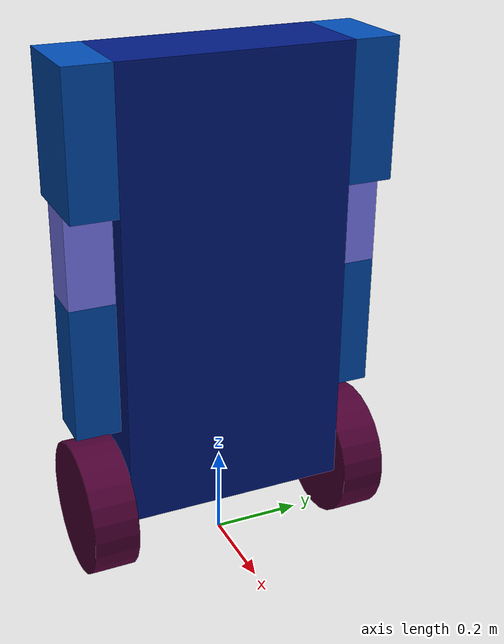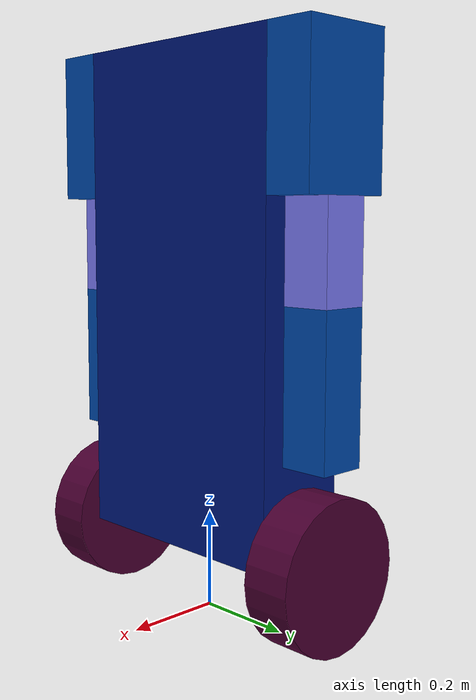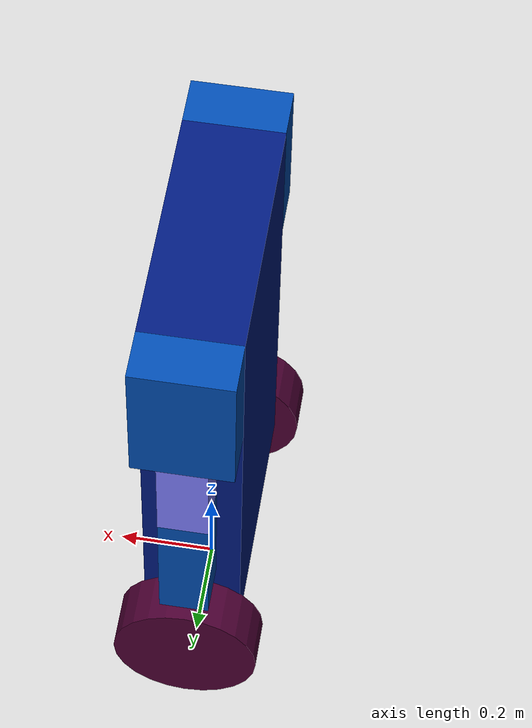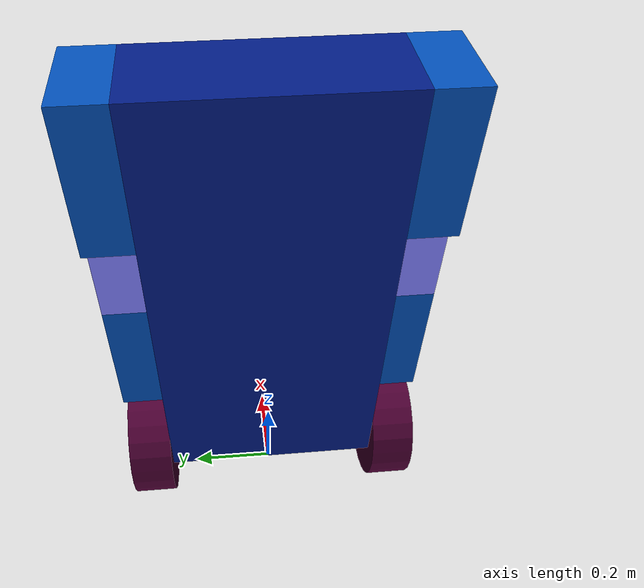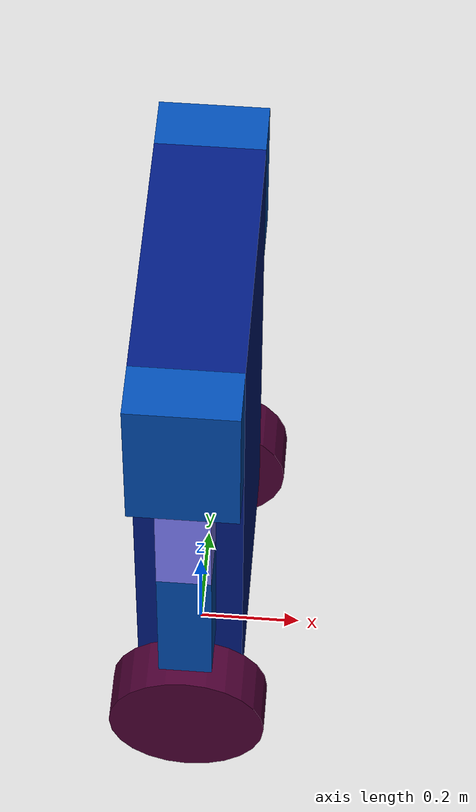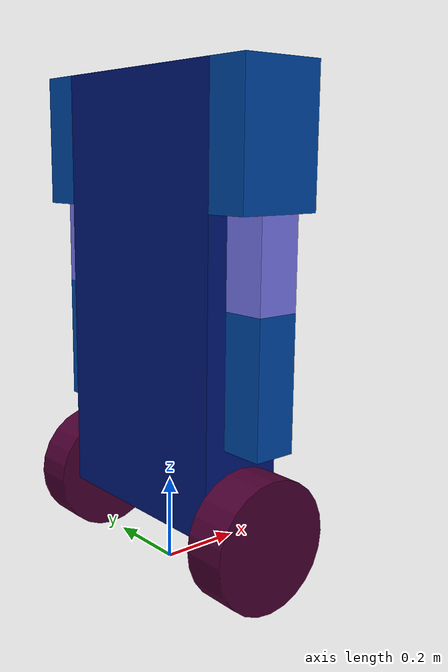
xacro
<?xml version="1.0"?>
<robot xmlns:xacro="http://www.ros.org/wiki/xacro" name="taser">

    <xacro:include filename="$(find taser_ros)/robot_description/urdf/xacro/base.xacro" />
    <xacro:include filename="$(find taser_ros)/robot_description/urdf/xacro/arm.xacro" />
    <xacro:include filename="$(find taser_ros)/robot_description/urdf/xacro/wheel.xacro" />
    <xacro:include filename="$(find taser_ros)/robot_description/urdf/xacro/ros2_control.xacro" />

    <xacro:taser_ros2_control />

    <xacro:base />

    <xacro:arm name="left" y_offset="0.3" />
    <xacro:arm name="right" y_offset="-0.3" />

    <xacro:wheel index="1" parent_link="base" y_offset="0.3" z_offset="-0.5" />
    <xacro:wheel index="2" parent_link="base" y_offset="-0.3" z_offset="-0.5" />

</robot>

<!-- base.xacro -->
<robot xmlns:xacro="http://www.ros.org/wiki/xacro">

    <material name="blue">
        <color rgba="0 0.1 0.5 1" />
    </material>

    <xacro:macro name="base">

        <!-- Base wrapper link to get a frame with z=0 -->
        <link name="base_wrapper" />

        <link name="base">
            <visual>
                <origin xyz="0.0 0.0 0.0" rpy="0.0 0.0 0.0" />
                <geometry>
                    <box size="0.2 0.5 1" />
                </geometry>
                <material name="blue" />
            </visual>
            <collision>
                <origin xyz="0.0 0.0 0.0" rpy="0.0 0.0 0.0" />
                <geometry>
                    <box size="0.2 0.5 1" />
                </geometry>
            </collision>
        </link>

        <joint name="base_wrapper_base_joint" type="fixed">
            <origin xyz="0.0 0.0 0.65" rpy="0.0 0.0 0" />
            <parent link="base_wrapper" />
            <child link="base" />
        </joint>

    </xacro:macro>

</robot>

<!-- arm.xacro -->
<robot xmlns:xacro="http://www.ros.org/wiki/xacro">

    <material name="light-blue">
        <color rgba="0 0.3 0.7 1" />
    </material>
    <material name="white">
        <color rgba="0.5 0.5 1 1" />
    </material>

    <xacro:macro name="arm" params="name y_offset">
        <link name="${name}_arm_1">
            <visual>
                <origin xyz="0.0 0.0 -0.15" rpy="0.0 0.0 0.0" />
                <geometry>
                    <box size="0.2 0.1 0.3" />
                </geometry>
                <material name="light-blue" />
            </visual>
            <collision>
                <origin xyz="0.0 0.0 -0.15" rpy="0.0 0.0 0.0" />
                <geometry>
                    <box size="0.2 0.1 0.3" />
                </geometry>
            </collision>
        </link>

        <joint name="base_${name}_arm_1_joint" type="continuous">
            <parent link="base" />
            <child link="${name}_arm_1" />
            <origin xyz="0.0 ${y_offset} 0.5" rpy="0.0 0.0 0.0" />
            <axis xyz="0 1 0" />
        </joint>

        <link name="${name}_arm_2">
            <visual>
                <origin xyz="0.0 0.0 -0.1" rpy="0.0 0.0 0.0" />
                <geometry>
                    <box size="0.1 0.1 0.2" />
                </geometry>
                <material name="white" />
            </visual>
            <collision>
                <origin xyz="0.0 0.0 -0.1" rpy="0.0 0.0 0.0" />
                <geometry>
                    <box size="0.1 0.1 0.2" />
                </geometry>
            </collision>
        </link>

        <joint name="${name}_arm_1_${name}_arm_2_joint" type="continuous">
            <parent link="${name}_arm_1" />
            <child link="${name}_arm_2" />
            <origin xyz="0.0 0 -0.3" rpy="0.0 0.0 0.0" />
            <axis xyz="0 0 1" />
        </joint>

        <link name="${name}_arm_3">
            <visual>
                <origin xyz="0.0 0.0 -0.15" rpy="0.0 0.0 0.0" />
                <geometry>
                    <box size="0.1 0.1 0.3" />
                </geometry>
                <material name="light-blue" />
            </visual>
            <collision>
                <origin xyz="0.0 0.0 -0.15" rpy="0.0 0.0 0.0" />
                <geometry>
                    <box size="0.1 0.1 0.3" />
                </geometry>
            </collision>
        </link>

        <joint name="${name}_arm_2_${name}_arm_3_joint" type="continuous">
            <parent link="${name}_arm_2" />
            <child link="${name}_arm_3" />
            <origin xyz="0.0 0 -0.2" rpy="0.0 0.0 0.0" />
            <axis xyz="0 1 0" />
        </joint>

        <link name="${name}_arm_eef">
        </link>

        <joint name="${name}_arm_3_${name}_arm_eef_joint" type="fixed">
            <parent link="${name}_arm_3" />
            <child link="${name}_arm_eef" />
            <origin xyz="0.0 0 -0.3" rpy="0.0 0.0 0.0" />
        </joint>

    </xacro:macro>

</robot>

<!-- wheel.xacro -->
<robot xmlns:xacro="http://www.ros.org/wiki/xacro">

    <material name="pink">
        <color rgba="0.3 0 0.2 1"/>
    </material>

    <xacro:macro name="wheel" params="index y_offset z_offset parent_link">
        <link name="wheel_${index}">
            <visual>
                <origin xyz="0.0 0.0 0.0" rpy="1.575 0.0 0.0"/>
                <geometry>
                    <cylinder length="0.1" radius="0.15"/>
                </geometry>
                <material name="pink"/>
            </visual>
            <collision>
                <origin xyz="0.0 0.0 0.0" rpy="1.575 0.0 0.0"/>
                <geometry>
                    <cylinder length="0.1" radius="0.15"/>
                </geometry>
            </collision>
        </link>

        <joint name="${parent_link}_wheel_${index}_joint" type="continuous">
            <parent link="${parent_link}"/>
            <child link="wheel_${index}"/>
            <origin xyz="0.0 ${y_offset} ${z_offset}" rpy="0.0 0.0 0.0"/>
            <axis xyz="0 1 0"/>
        </joint>
    </xacro:macro>

</robot>
